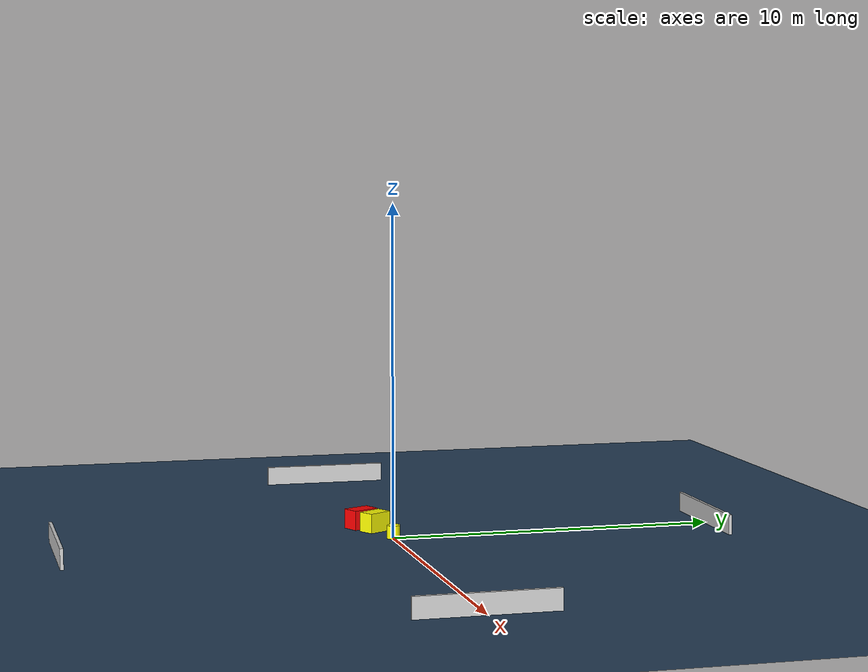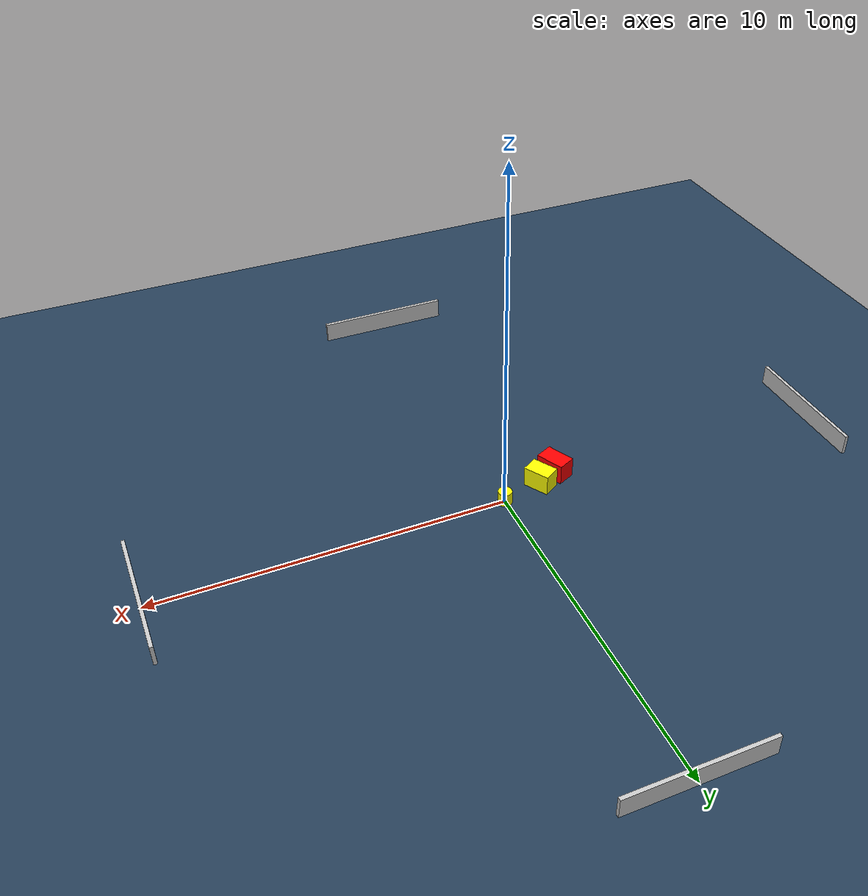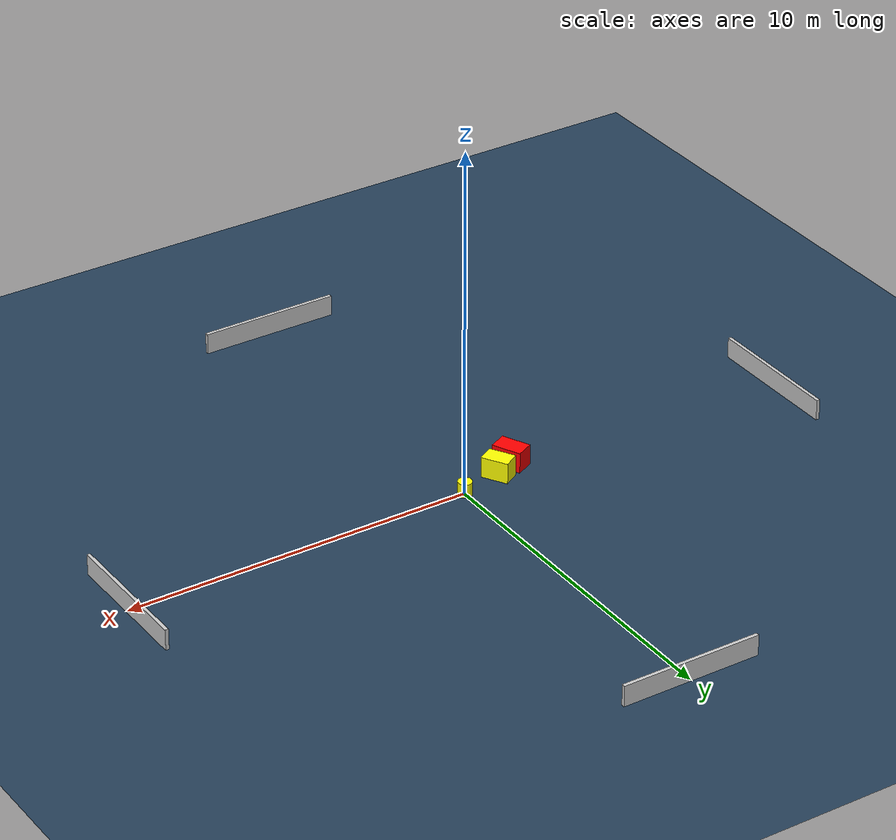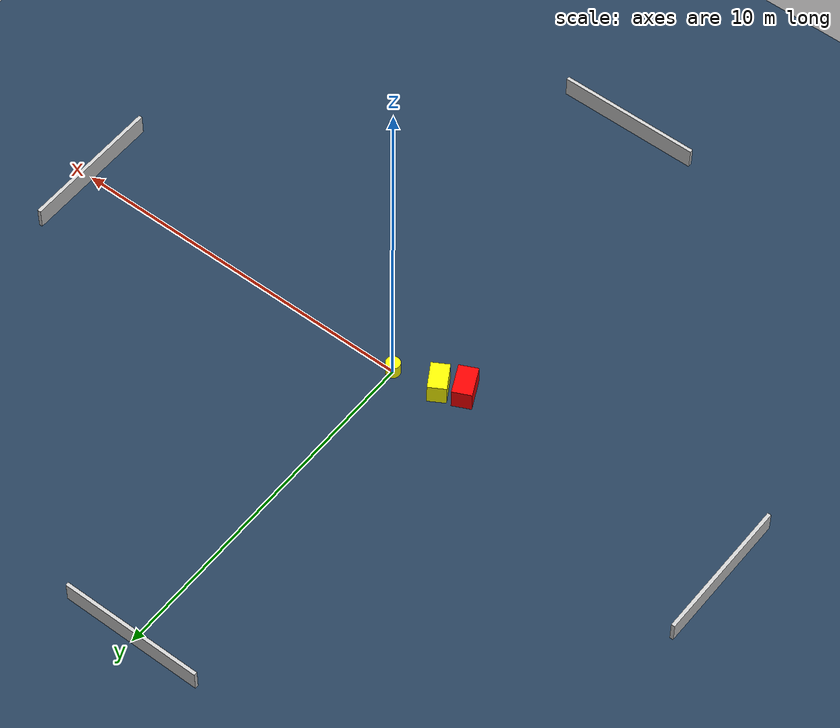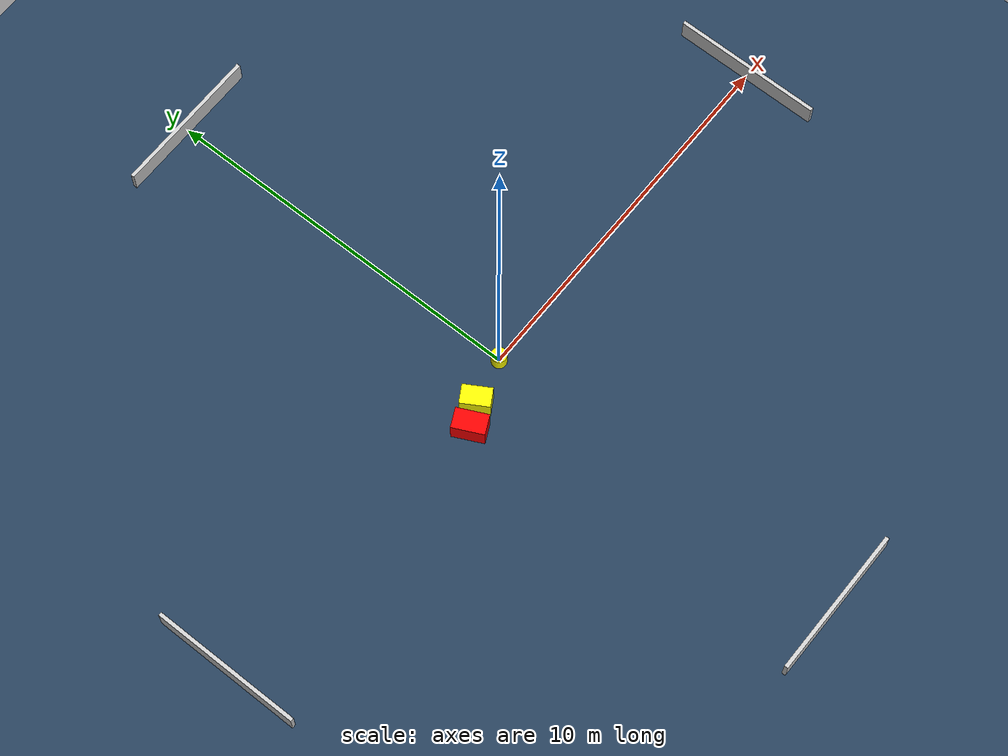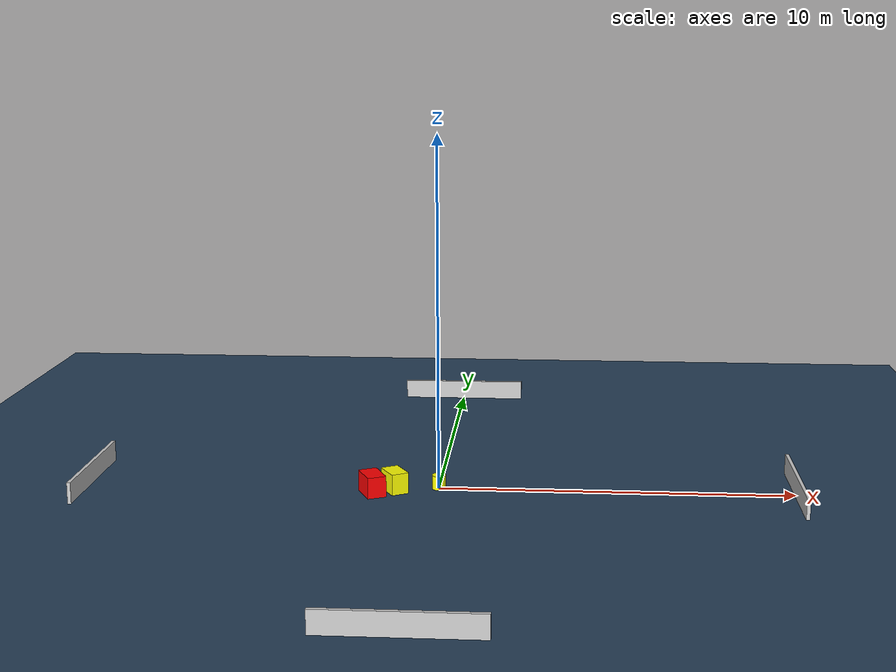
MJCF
<?xml version="1.0" ?>
<mujoco model="generated_environment">
  <option timestep="0.01" integrator="RK4" cone="elliptic"/>
  <default>
    <geom density="1"/>
  </default>
  <asset>
    <texture builtin="gradient" height="3072" name="skybox" rgb1="0.3 0.5 0.7" rgb2="0 0 0" type="skybox" width="512"/>
    <texture builtin="checker" height="300" name="groundplane" rgb1="0.2 0.3 0.4" rgb2="0.1 0.2 0.3" type="2d" width="300"/>
    <material name="groundplane" reflectance="0.2" texrepeat="5 5" texture="groundplane"/>
  </asset>
  <worldbody>
    <light dir="0 0 -1" directional="true" pos="0 0 1.5"/>
    <geom condim="3" friction="0.5 0.005 0.001" material="groundplane" name="floor" pos="0 0 0" size="0 0 0.05" type="plane"/>
    <body name="walls">
      <geom name="wall_1" condim="4" pos="-10.0 0.0 0.3" rgba="0.800000011920929 0.800000011920929 0.800000011920929 1.0" size="0.05 2.0 0.3" type="box"/>
      <geom name="wall_2" condim="4" pos="10.0 0.0 0.3" rgba="0.800000011920929 0.800000011920929 0.800000011920929 1.0" size="0.05 2.0 0.3" type="box"/>
      <geom name="wall_3" condim="4" pos="0.0 -10.0 0.3" rgba="0.800000011920929 0.800000011920929 0.800000011920929 1.0" size="2.0 0.05 0.3" type="box"/>
      <geom name="wall_4" condim="4" pos="0.0 10.0 0.3" rgba="0.800000011920929 0.800000011920929 0.800000011920929 1.0" size="2.0 0.05 0.3" type="box"/>
    </body>
    <body name="robot">
      <joint name="joint_x" type="slide" pos="0 0 0" axis="1 0 0"/>
      <joint name="joint_y" type="slide" pos="0 0 0" axis="0 1 0"/>
      <geom name="robot" type="cylinder" pos="0.0 0.0 0.2" size="0.2 0.2 0.0" mass="5.0" friction="1.0 0.005 0.0001" condim="4" rgba="1.0 1.0 0.0 1.0"/>
    </body>
    <body name="obstacle_1_movable">
      <geom name="obstacle_1_movable" condim="4" pos="-1.2265696213942203 -0.27847305877273243 0.3" euler="0 0 120.64992296281548" friction="0.0 0.005 0.001" rgba="1.0 1.0 0.0 1.0" size="0.3858775941012923 0.25159026434343534 0.3" type="box" mass="0.1"/>
      <joint type="free"/>
    </body>
    <body name="obstacle_2_static">
      <geom name="obstacle_2_static" condim="4" pos="-1.8247239594100346 -0.5790997755598684 0.3" euler="0 0 115.60958569187582" friction="0.0 0.005 0.001" rgba="1.0 0.0 0.0 1.0" size="0.4251174022780186 0.26690962924256234 0.3" type="box"/>
    </body>
  </worldbody>
  <actuator>
    <motor name="actuator_x" joint="joint_x" gear="1" ctrlrange="-1 1"/>
    <motor name="actuator_y" joint="joint_y" gear="1" ctrlrange="-1 1"/>
  </actuator>
</mujoco>
